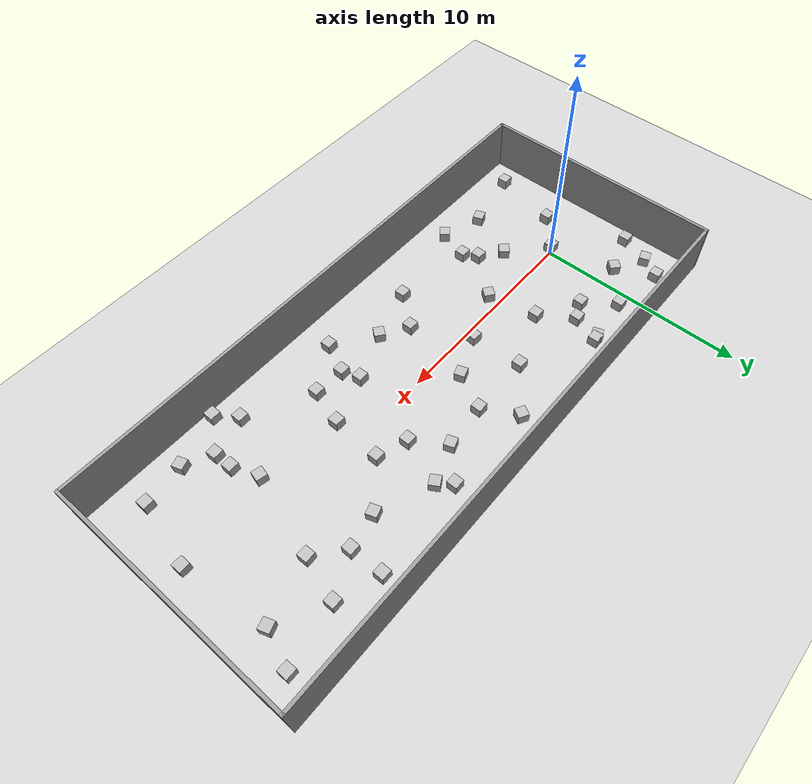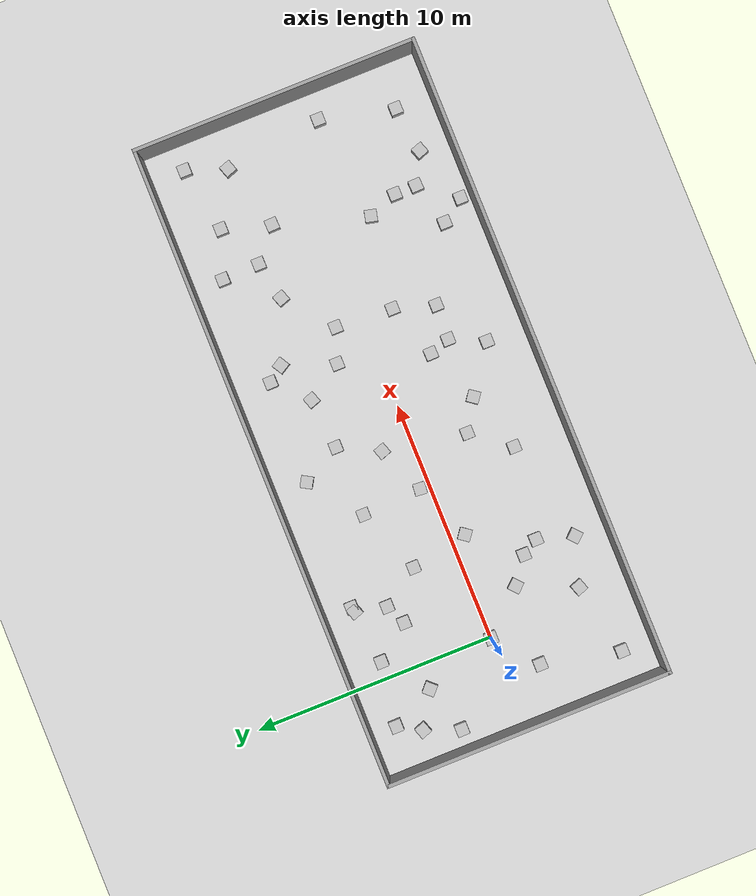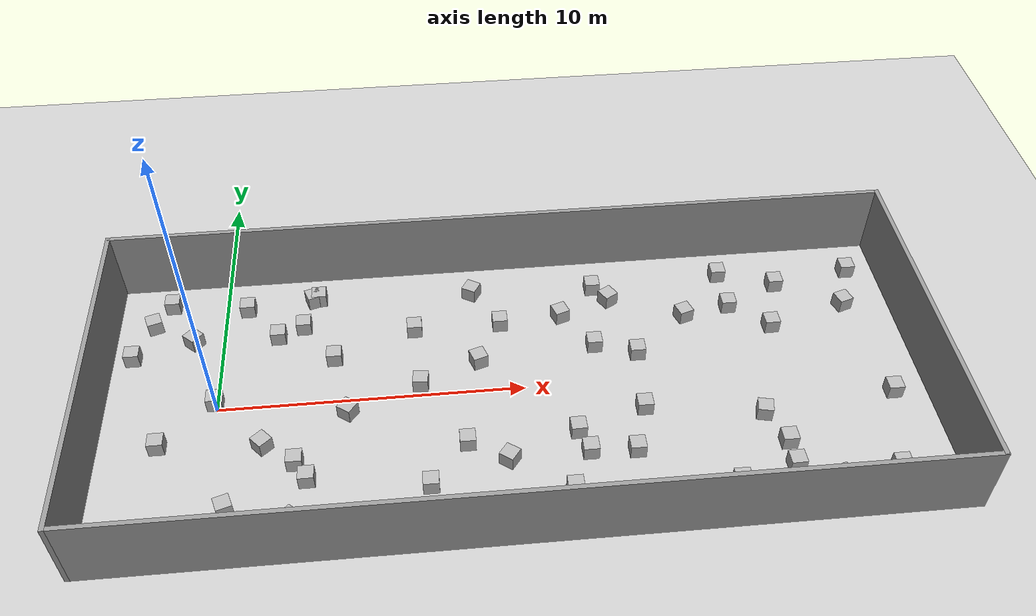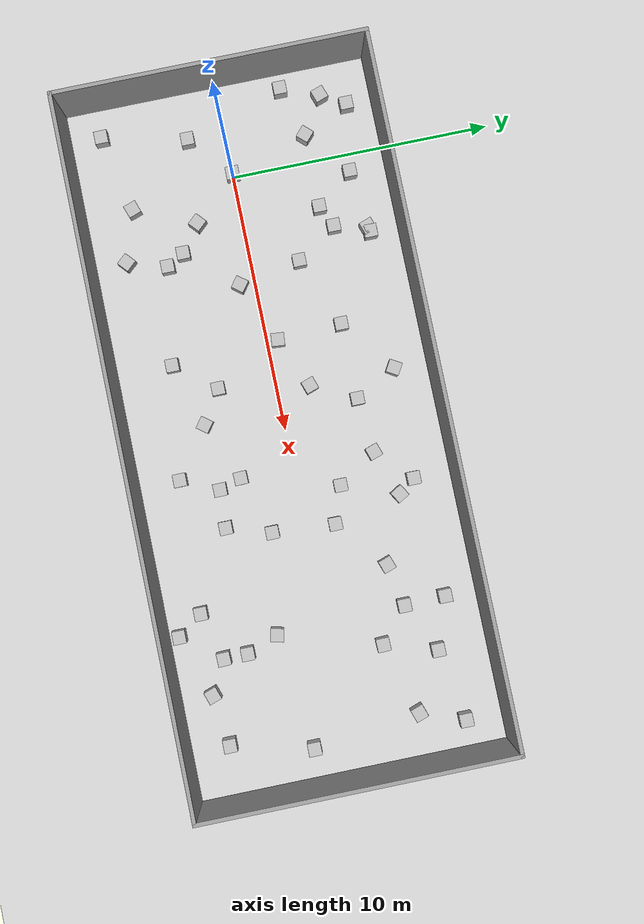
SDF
<sdf version="1.4">
 <world name="animated_box_world">
  <include><uri>model://ground_plane</uri></include>
  <include><uri>model://sun</uri></include>
  <model name="boxes">
   <model name="box_1">
    <pose name="pose">0 0 0.5 0 0 0</pose>
    <link name="link">
     <collision name="collision"><geometry><box><size>0.5 0.5 0.5</size></box></geometry></collision>
     <visual name="visual"><geometry><box><size>0.5 0.5 0.5</size></box></geometry></visual>
    </link>
   </model>
   <model name="box_2">
    <pose>0 0 0.5 0 0 0</pose>
    <link name="link">
     <collision name="collision"><geometry><box><size>0.5 0.5 0.5</size></box></geometry></collision>
     <visual name="visual"><geometry><box><size>0.5 0.5 0.5</size></box></geometry></visual>
    </link>
   </model>
   <model name="box_3">
    <pose>0 0 0.5 0 0 0</pose>
    <link name="link">
     <collision name="collision"><geometry><box><size>0.5 0.5 0.5</size></box></geometry></collision>
     <visual name="visual"><geometry><box><size>0.5 0.5 0.5</size></box></geometry></visual>
    </link>
   </model>
   <model name="box_4">
    <pose>0 0 0.5 0 0 0</pose>
    <link name="link">
     <collision name="collision"><geometry><box><size>0.5 0.5 0.5</size></box></geometry></collision>
     <visual name="visual"><geometry><box><size>0.5 0.5 0.5</size></box></geometry></visual>
    </link>
   </model>
   <plugin name="push_animate" filename="libanimated_box.so"/>
  </model>
  <model name="static-box-1">
   <pose>13.19 -2.96 0.249999 -2e-06 1e-06 1e-06</pose>
   <link name="link">
    <collision name="collision"><geometry><box><size>0.5 0.5 0.5</size></box></geometry></collision>
    <visual name="visual"><geometry><box><size>0.5 0.5 0.5</size></box></geometry></visual>
    <inertial>
     <inertia><ixx>1</ixx><ixy>0</ixy><ixz>0</ixz><iyy>1</iyy><iyz>0</iyz><izz>1</izz></inertia>
     <mass>1</mass>
    </inertial>
   </link>
  </model>
  <model name="static-box-3">
   <pose>1.85 3 0.249999 -1e-06 -1e-06 2e-06</pose>
   <link name="link">
    <collision name="collision"><geometry><box><size>0.5 0.5 0.5</size></box></geometry></collision>
    <visual name="visual"><geometry><box><size>0.5 0.5 0.5</size></box></geometry></visual>
    <inertial>
     <inertia><ixx>1</ixx><ixy>0</ixy><ixz>0</ixz><iyy>1</iyy><iyz>0</iyz><izz>1</izz></inertia>
     <mass>1</mass>
    </inertial>
   </link>
  </model>
  <model name="static-box-6">
   <pose>6.58134 0.409469 0.249999 -3.14159 -2e-06 3.05166</pose>
   <link name="link">
    <collision name="collision"><geometry><box><size>0.5 0.5 0.5</size></box></geometry></collision>
    <visual name="visual"><geometry><box><size>0.5 0.5 0.5</size></box></geometry></visual>
    <inertial>
     <inertia><ixx>1</ixx><ixy>0</ixy><ixz>0</ixz><iyy>1</iyy><iyz>0</iyz><izz>1</izz></inertia>
     <mass>1</mass>
    </inertial>
   </link>
  </model>
  <model name="static-box-8">
   <pose>-2.96 2.44 0.249999 2e-06 1e-06 1e-06</pose>
   <link name="link">
    <collision name="collision"><geometry><box><size>0.5 0.5 0.5</size></box></geometry></collision>
    <visual name="visual"><geometry><box><size>0.5 0.5 0.5</size></box></geometry></visual>
    <inertial>
     <inertia><ixx>1</ixx><ixy>0</ixy><ixz>0</ixz><iyy>1</iyy><iyz>0</iyz><izz>1</izz></inertia>
     <mass>1</mass>
    </inertial>
   </link>
  </model>
  <model name="static-box-9">
   <pose>17.9724 -4.00122 0.249999 2.87374 1.57079 2.89996</pose>
   <link name="link">
    <collision name="collision"><geometry><box><size>0.5 0.5 0.5</size></box></geometry></collision>
    <visual name="visual"><geometry><box><size>0.5 0.5 0.5</size></box></geometry></visual>
    <inertial>
     <inertia><ixx>1</ixx><ixy>0</ixy><ixz>0</ixz><iyy>1</iyy><iyz>0</iyz><izz>1</izz></inertia>
     <mass>1</mass>
    </inertial>
   </link>
  </model>
  <model name="static-box-11">
   <pose>16.84 -5.48 0.249999 1e-06 -2e-06 -1e-06</pose>
   <link name="link">
    <collision name="collision"><geometry><box><size>0.5 0.5 0.5</size></box></geometry></collision>
    <visual name="visual"><geometry><box><size>0.5 0.5 0.5</size></box></geometry></visual>
    <inertial>
     <inertia><ixx>1</ixx><ixy>0</ixy><ixz>0</ixz><iyy>1</iyy><iyz>0</iyz><izz>1</izz></inertia>
     <mass>1</mass>
    </inertial>
   </link>
  </model>
  <model name="static-box-12">
   <pose>13.87 1.13 0.25 -1e-06 -0 1e-06</pose>
   <link name="link">
    <collision name="collision"><geometry><box><size>0.5 0.5 0.5</size></box></geometry></collision>
    <visual name="visual"><geometry><box><size>0.5 0.5 0.5</size></box></geometry></visual>
    <inertial>
     <inertia><ixx>1</ixx><ixy>0</ixy><ixz>0</ixz><iyy>1</iyy><iyz>0</iyz><izz>1</izz></inertia>
     <mass>1</mass>
    </inertial>
   </link>
  </model>
  <model name="static-box-14">
   <pose>4.21 -0.58 0.249999 -2e-06 2e-06 2.5</pose>
   <link name="link">
    <collision name="collision"><geometry><box><size>0.5 0.5 0.5</size></box></geometry></collision>
    <visual name="visual"><geometry><box><size>0.5 0.5 0.5</size></box></geometry></visual>
    <inertial>
     <inertia><ixx>1</ixx><ixy>0</ixy><ixz>0</ixz><iyy>1</iyy><iyz>0</iyz><izz>1</izz></inertia>
     <mass>1</mass>
    </inertial>
   </link>
  </model>
  <model name="static-box-15">
   <pose>-2.45 -4.67 0.25 2e-06 0 -1e-06</pose>
   <link name="link">
    <collision name="collision"><geometry><box><size>0.5 0.5 0.5</size></box></geometry></collision>
    <visual name="visual"><geometry><box><size>0.5 0.5 0.5</size></box></geometry></visual>
    <inertial>
     <inertia><ixx>1</ixx><ixy>0</ixy><ixz>0</ixz><iyy>1</iyy><iyz>0</iyz><izz>1</izz></inertia>
     <mass>1</mass>
    </inertial>
   </link>
  </model>
  <model name="static-box-17">
   <pose>11.5025 3.11104 0.25 -1.5708 -0 -2.81111</pose>
   <link name="link">
    <collision name="collision"><geometry><box><size>0.5 0.5 0.5</size></box></geometry></collision>
    <visual name="visual"><geometry><box><size>0.5 0.5 0.5</size></box></geometry></visual>
    <inertial>
     <inertia><ixx>1</ixx><ixy>0</ixy><ixz>0</ixz><iyy>1</iyy><iyz>0</iyz><izz>1</izz></inertia>
     <mass>1</mass>
    </inertial>
   </link>
  </model>
  <model name="static-box-18">
   <pose>17.39 3.05 0.249999 1e-06 2e-06 0</pose>
   <link name="link">
    <collision name="collision"><geometry><box><size>0.5 0.5 0.5</size></box></geometry></collision>
    <visual name="visual"><geometry><box><size>0.5 0.5 0.5</size></box></geometry></visual>
    <inertial>
     <inertia><ixx>1</ixx><ixy>0</ixy><ixz>0</ixz><iyy>1</iyy><iyz>0</iyz><izz>1</izz></inertia>
     <mass>1</mass>
    </inertial>
   </link>
  </model>
  <model name="static-box-19">
   <pose>21.16 -4.41 0.249999 1e-06 -2e-06 -1e-06</pose>
   <link name="link">
    <collision name="collision"><geometry><box><size>0.5 0.5 0.5</size></box></geometry></collision>
    <visual name="visual"><geometry><box><size>0.5 0.5 0.5</size></box></geometry></visual>
    <inertial>
     <inertia><ixx>1</ixx><ixy>0</ixy><ixz>0</ixz><iyy>1</iyy><iyz>0</iyz><izz>1</izz></inertia>
     <mass>1</mass>
    </inertial>
   </link>
  </model>
  <model name="static-box-21">
   <pose>17.5024 -1.85915 0.25 2e-06 -0 -1.8</pose>
   <link name="link">
    <collision name="collision"><geometry><box><size>0.5 0.5 0.5</size></box></geometry></collision>
    <visual name="visual"><geometry><box><size>0.5 0.5 0.5</size></box></geometry></visual>
    <inertial>
     <inertia><ixx>1</ixx><ixy>0</ixy><ixz>0</ixz><iyy>1</iyy><iyz>0</iyz><izz>1</izz></inertia>
     <mass>1</mass>
    </inertial>
   </link>
  </model>
  <model name="static-box-22">
   <pose>2.7 3.39 0.249999 2e-06 1e-06 1e-06</pose>
   <link name="link">
    <collision name="collision"><geometry><box><size>0.5 0.5 0.5</size></box></geometry></collision>
    <visual name="visual"><geometry><box><size>0.5 0.5 0.5</size></box></geometry></visual>
    <inertial>
     <inertia><ixx>1</ixx><ixy>0</ixy><ixz>0</ixz><iyy>1</iyy><iyz>0</iyz><izz>1</izz></inertia>
     <mass>1</mass>
    </inertial>
   </link>
  </model>
  <model name="static-box-23">
   <pose>16.15 -4.52 0.249999 -1e-06 2e-06 1e-06</pose>
   <link name="link">
    <collision name="collision"><geometry><box><size>0.5 0.5 0.5</size></box></geometry></collision>
    <visual name="visual"><geometry><box><size>0.5 0.5 0.5</size></box></geometry></visual>
    <inertial>
     <inertia><ixx>1</ixx><ixy>0</ixy><ixz>0</ixz><iyy>1</iyy><iyz>0</iyz><izz>1</izz></inertia>
     <mass>1</mass>
    </inertial>
   </link>
  </model>
  <model name="static-box-24">
   <pose>7.95 -2.19 0.249999 1e-06 2e-06 -1e-06</pose>
   <link name="link">
    <collision name="collision"><geometry><box><size>0.5 0.5 0.5</size></box></geometry></collision>
    <visual name="visual"><geometry><box><size>0.5 0.5 0.5</size></box></geometry></visual>
    <inertial>
     <inertia><ixx>1</ixx><ixy>0</ixy><ixz>0</ixz><iyy>1</iyy><iyz>0</iyz><izz>1</izz></inertia>
     <mass>1</mass>
    </inertial>
   </link>
  </model>
  <model name="static-box-25">
   <pose>8.52 4.52 0.249999 2e-06 -0 -2.1</pose>
   <link name="link">
    <collision name="collision"><geometry><box><size>0.5 0.5 0.5</size></box></geometry></collision>
    <visual name="visual"><geometry><box><size>0.5 0.5 0.5</size></box></geometry></visual>
    <inertial>
     <inertia><ixx>1</ixx><ixy>0</ixy><ixz>0</ixz><iyy>1</iyy><iyz>0</iyz><izz>1</izz></inertia>
     <mass>1</mass>
    </inertial>
   </link>
  </model>
  <model name="static-box-22_clone">
   <pose>6.4616 2.90024 0.249999 1e-06 2e-06 3e-06</pose>
   <link name="link">
    <collision name="collision"><geometry><box><size>0.5 0.5 0.5</size></box></geometry></collision>
    <visual name="visual"><geometry><box><size>0.5 0.5 0.5</size></box></geometry></visual>
    <inertial>
     <inertia><ixx>1</ixx><ixy>0</ixy><ixz>0</ixz><iyy>1</iyy><iyz>0</iyz><izz>1</izz></inertia>
     <mass>1</mass>
    </inertial>
   </link>
  </model>
  <model name="static-box-22_clone_clone">
   <pose>1.54635 -1.69897 0.249999 2e-06 2e-06 2.3</pose>
   <link name="link">
    <collision name="collision"><geometry><box><size>0.5 0.5 0.5</size></box></geometry></collision>
    <visual name="visual"><geometry><box><size>0.5 0.5 0.5</size></box></geometry></visual>
    <inertial>
     <inertia><ixx>1</ixx><ixy>0</ixy><ixz>0</ixz><iyy>1</iyy><iyz>0</iyz><izz>1</izz></inertia>
     <mass>1</mass>
    </inertial>
   </link>
  </model>
  <model name="static-box-22_clone_clone_clone">
   <pose>-1.72184 -1.43715 0.249999 -1e-06 2e-06 1e-06</pose>
   <link name="link">
    <collision name="collision"><geometry><box><size>0.5 0.5 0.5</size></box></geometry></collision>
    <visual name="visual"><geometry><box><size>0.5 0.5 0.5</size></box></geometry></visual>
    <inertial>
     <inertia><ixx>1</ixx><ixy>0</ixy><ixz>0</ixz><iyy>1</iyy><iyz>0</iyz><izz>1</izz></inertia>
     <mass>1</mass>
    </inertial>
   </link>
  </model>
  <model name="static-box-22_clone_clone_clone_clone">
   <pose>-0.987316 3.02709 0.249999 -2e-06 -2e-06 2.4</pose>
   <link name="link">
    <collision name="collision"><geometry><box><size>0.5 0.5 0.5</size></box></geometry></collision>
    <visual name="visual"><geometry><box><size>0.5 0.5 0.5</size></box></geometry></visual>
    <inertial>
     <inertia><ixx>1</ixx><ixy>0</ixy><ixz>0</ixz><iyy>1</iyy><iyz>0</iyz><izz>1</izz></inertia>
     <mass>1</mass>
    </inertial>
   </link>
  </model>
  <model name="static-box-9_clone">
   <pose>18.6621 1.96673 0.25 3.11537 1.57079 3.14159</pose>
   <link name="link">
    <collision name="collision"><geometry><box><size>0.5 0.5 0.5</size></box></geometry></collision>
    <visual name="visual"><geometry><box><size>0.5 0.5 0.5</size></box></geometry></visual>
    <inertial>
     <inertia><ixx>1</ixx><ixy>0</ixy><ixz>0</ixz><iyy>1</iyy><iyz>0</iyz><izz>1</izz></inertia>
     <mass>1</mass>
    </inertial>
   </link>
  </model>
  <model name="static-box-9_clone_clone">
   <pose>11.459 -2.02778 0.249999 2.29077 1.57079 2.317</pose>
   <link name="link">
    <collision name="collision"><geometry><box><size>0.5 0.5 0.5</size></box></geometry></collision>
    <visual name="visual"><geometry><box><size>0.5 0.5 0.5</size></box></geometry></visual>
    <inertial>
     <inertia><ixx>1</ixx><ixy>0</ixy><ixz>0</ixz><iyy>1</iyy><iyz>0</iyz><izz>1</izz></inertia>
     <mass>1</mass>
    </inertial>
   </link>
  </model>
  <model name="static-box-17_clone">
   <pose>8.53873 1.25127 0.25 -1.5708 -0 -2.81111</pose>
   <link name="link">
    <collision name="collision"><geometry><box><size>0.5 0.5 0.5</size></box></geometry></collision>
    <visual name="visual"><geometry><box><size>0.5 0.5 0.5</size></box></geometry></visual>
    <inertial>
     <inertia><ixx>1</ixx><ixy>0</ixy><ixz>0</ixz><iyy>1</iyy><iyz>0</iyz><izz>1</izz></inertia>
     <mass>1</mass>
    </inertial>
   </link>
  </model>
  <model name="static-box-24_clone">
   <pose>2.97013 -3.14949 0.25 0 -0 1e-06</pose>
   <link name="link">
    <collision name="collision"><geometry><box><size>0.5 0.5 0.5</size></box></geometry></collision>
    <visual name="visual"><geometry><box><size>0.5 0.5 0.5</size></box></geometry></visual>
    <inertial>
     <inertia><ixx>1</ixx><ixy>0</ixy><ixz>0</ixz><iyy>1</iyy><iyz>0</iyz><izz>1</izz></inertia>
     <mass>1</mass>
    </inertial>
   </link>
  </model>
  <model name="static-box-24_clone_0">
   <pose>6.7355 -3.72569 0.249999 -2e-06 1e-06 -0</pose>
   <link name="link">
    <collision name="collision"><geometry><box><size>0.5 0.5 0.5</size></box></geometry></collision>
    <visual name="visual"><geometry><box><size>0.5 0.5 0.5</size></box></geometry></visual>
    <inertial>
     <inertia><ixx>1</ixx><ixy>0</ixy><ixz>0</ixz><iyy>1</iyy><iyz>0</iyz><izz>1</izz></inertia>
     <mass>1</mass>
    </inertial>
   </link>
  </model>
  <model name="static-box-1_clone">
   <pose>21.9145 -1.33857 0.249999 1e-06 2e-06 0</pose>
   <link name="link">
    <collision name="collision"><geometry><box><size>0.5 0.5 0.5</size></box></geometry></collision>
    <visual name="visual"><geometry><box><size>0.5 0.5 0.5</size></box></geometry></visual>
    <inertial>
     <inertia><ixx>1</ixx><ixy>0</ixy><ixz>0</ixz><iyy>1</iyy><iyz>0</iyz><izz>1</izz></inertia>
     <mass>1</mass>
    </inertial>
   </link>
  </model>
  <model name="static-box-1_clone_clone">
   <pose>19.2665 3.94861 0.249999 2e-06 -1e-06 1e-06</pose>
   <link name="link">
    <collision name="collision"><geometry><box><size>0.5 0.5 0.5</size></box></geometry></collision>
    <visual name="visual"><geometry><box><size>0.5 0.5 0.5</size></box></geometry></visual>
    <inertial>
     <inertia><ixx>1</ixx><ixy>0</ixy><ixz>0</ixz><iyy>1</iyy><iyz>0</iyz><izz>1</izz></inertia>
     <mass>1</mass>
    </inertial>
   </link>
  </model>
  <model name="static-box-18_clone">
   <pose>12.7796 4.38472 0.249999 1e-06 1e-06 -1e-06</pose>
   <link name="link">
    <collision name="collision"><geometry><box><size>0.5 0.5 0.5</size></box></geometry></collision>
    <visual name="visual"><geometry><box><size>0.5 0.5 0.5</size></box></geometry></visual>
    <inertial>
     <inertia><ixx>1</ixx><ixy>0</ixy><ixz>0</ixz><iyy>1</iyy><iyz>0</iyz><izz>1</izz></inertia>
     <mass>1</mass>
    </inertial>
   </link>
  </model>
  <model name="static-box-15_clone">
   <pose>0.740507 4.42716 0.249999 1e-06 2e-06 0</pose>
   <link name="link">
    <collision name="collision"><geometry><box><size>0.5 0.5 0.5</size></box></geometry></collision>
    <visual name="visual"><geometry><box><size>0.5 0.5 0.5</size></box></geometry></visual>
    <inertial>
     <inertia><ixx>1</ixx><ixy>0</ixy><ixz>0</ixz><iyy>1</iyy><iyz>0</iyz><izz>1</izz></inertia>
     <mass>1</mass>
    </inertial>
   </link>
  </model>
  <model name="static-box-22_clone_0">
   <pose>3.75296 1.82257 0.249999 -1e-06 -2e-06 2e-06</pose>
   <link name="link">
    <collision name="collision"><geometry><box><size>0.5 0.5 0.5</size></box></geometry></collision>
    <visual name="visual"><geometry><box><size>0.5 0.5 0.5</size></box></geometry></visual>
    <inertial>
     <inertia><ixx>1</ixx><ixy>0</ixy><ixz>0</ixz><iyy>1</iyy><iyz>0</iyz><izz>1</izz></inertia>
     <mass>1</mass>
    </inertial>
   </link>
  </model>
  <model name="static-box-12_clone">
   <pose>13.7097 -1.26957 0.249999 1e-06 2e-06 0</pose>
   <link name="link">
    <collision name="collision"><geometry><box><size>0.5 0.5 0.5</size></box></geometry></collision>
    <visual name="visual"><geometry><box><size>0.5 0.5 0.5</size></box></geometry></visual>
    <inertial>
     <inertia><ixx>1</ixx><ixy>0</ixy><ixz>0</ixz><iyy>1</iyy><iyz>0</iyz><izz>1</izz></inertia>
     <mass>1</mass>
    </inertial>
   </link>
  </model>
  <model name="static-box-12_clone_0">
   <pose>12.4831 1.62032 0.249999 1e-06 -2e-06 1e-06</pose>
   <link name="link">
    <collision name="collision"><geometry><box><size>0.5 0.5 0.5</size></box></geometry></collision>
    <visual name="visual"><geometry><box><size>0.5 0.5 0.5</size></box></geometry></visual>
    <inertial>
     <inertia><ixx>1</ixx><ixy>0</ixy><ixz>0</ixz><iyy>1</iyy><iyz>0</iyz><izz>1</izz></inertia>
     <mass>1</mass>
    </inertial>
   </link>
  </model>
  <model name="static-box-17_clone_0">
   <pose>21.4157 2.76641 0.25 -1.5708 -0 -2.81111</pose>
   <link name="link">
    <collision name="collision"><geometry><box><size>0.5 0.5 0.5</size></box></geometry></collision>
    <visual name="visual"><geometry><box><size>0.5 0.5 0.5</size></box></geometry></visual>
    <inertial>
     <inertia><ixx>1</ixx><ixy>0</ixy><ixz>0</ixz><iyy>1</iyy><iyz>0</iyz><izz>1</izz></inertia>
     <mass>1</mass>
    </inertial>
   </link>
  </model>
  <model name="static-box-17_clone_clone">
   <pose>0.545141 -4.0345 0.25 -1.5708 -0 -2.81111</pose>
   <link name="link">
    <collision name="collision"><geometry><box><size>0.5 0.5 0.5</size></box></geometry></collision>
    <visual name="visual"><geometry><box><size>0.5 0.5 0.5</size></box></geometry></visual>
    <inertial>
     <inertia><ixx>1</ixx><ixy>0</ixy><ixz>0</ixz><iyy>1</iyy><iyz>0</iyz><izz>1</izz></inertia>
     <mass>1</mass>
    </inertial>
   </link>
  </model>
  <model name="static-box-24_clone_1">
   <pose>9.20474 -2.96209 0.25 0 -0 2.5</pose>
   <link name="link">
    <collision name="collision"><geometry><box><size>0.5 0.5 0.5</size></box></geometry></collision>
    <visual name="visual"><geometry><box><size>0.5 0.5 0.5</size></box></geometry></visual>
    <inertial>
     <inertia><ixx>1</ixx><ixy>0</ixy><ixz>0</ixz><iyy>1</iyy><iyz>0</iyz><izz>1</izz></inertia>
     <mass>1</mass>
    </inertial>
   </link>
  </model>
  <model name="static-box-24_clone_2">
   <pose>2.58153 -2.46906 0.25 0 1e-06 -1e-06</pose>
   <link name="link">
    <collision name="collision"><geometry><box><size>0.5 0.5 0.5</size></box></geometry></collision>
    <visual name="visual"><geometry><box><size>0.5 0.5 0.5</size></box></geometry></visual>
    <inertial>
     <inertia><ixx>1</ixx><ixy>0</ixy><ixz>0</ixz><iyy>1</iyy><iyz>0</iyz><izz>1</izz></inertia>
     <mass>1</mass>
    </inertial>
   </link>
  </model>
  <model name="static-box-24_clone_3">
   <pose>11.0743 -4.30022 0.25 0 1e-06 -1e-06</pose>
   <link name="link">
    <collision name="collision"><geometry><box><size>0.5 0.5 0.5</size></box></geometry></collision>
    <visual name="visual"><geometry><box><size>0.5 0.5 0.5</size></box></geometry></visual>
    <inertial>
     <inertia><ixx>1</ixx><ixy>0</ixy><ixz>0</ixz><iyy>1</iyy><iyz>0</iyz><izz>1</izz></inertia>
     <mass>1</mass>
    </inertial>
   </link>
  </model>
  <model name="static-box-24_clone_4">
   <pose>13.2599 3.74209 0.25 0 -0 2.1</pose>
   <link name="link">
    <collision name="collision"><geometry><box><size>0.5 0.5 0.5</size></box></geometry></collision>
    <visual name="visual"><geometry><box><size>0.5 0.5 0.5</size></box></geometry></visual>
    <inertial>
     <inertia><ixx>1</ixx><ixy>0</ixy><ixz>0</ixz><iyy>1</iyy><iyz>0</iyz><izz>1</izz></inertia>
     <mass>1</mass>
    </inertial>
   </link>
  </model>
  <model name="static-box-24_clone_5">
   <pose>3.19443 4.72459 0.25 0 1e-06 -1e-06</pose>
   <link name="link">
    <collision name="collision"><geometry><box><size>0.5 0.5 0.5</size></box></geometry></collision>
    <visual name="visual"><geometry><box><size>0.5 0.5 0.5</size></box></geometry></visual>
    <inertial>
     <inertia><ixx>1</ixx><ixy>0</ixy><ixz>0</ixz><iyy>1</iyy><iyz>0</iyz><izz>1</izz></inertia>
     <mass>1</mass>
    </inertial>
   </link>
  </model>
  <model name="static-box-24_clone_6">
   <pose>9.38785 2.91862 0.25 0 1e-06 -1e-06</pose>
   <link name="link">
    <collision name="collision"><geometry><box><size>0.5 0.5 0.5</size></box></geometry></collision>
    <visual name="visual"><geometry><box><size>0.5 0.5 0.5</size></box></geometry></visual>
    <inertial>
     <inertia><ixx>1</ixx><ixy>0</ixy><ixz>0</ixz><iyy>1</iyy><iyz>0</iyz><izz>1</izz></inertia>
     <mass>1</mass>
    </inertial>
   </link>
  </model>
  <model name="static-box-24_clone_7">
   <pose>22.0165 4.43039 0.25 0 1e-06 -1e-06</pose>
   <link name="link">
    <collision name="collision"><geometry><box><size>0.5 0.5 0.5</size></box></geometry></collision>
    <visual name="visual"><geometry><box><size>0.5 0.5 0.5</size></box></geometry></visual>
    <inertial>
     <inertia><ixx>1</ixx><ixy>0</ixy><ixz>0</ixz><iyy>1</iyy><iyz>0</iyz><izz>1</izz></inertia>
     <mass>1</mass>
    </inertial>
   </link>
  </model>
  <model name="static-box-24_clone_8">
   <pose>17.9661 -3.08279 0.25 0 1e-06 -1e-06</pose>
   <link name="link">
    <collision name="collision"><geometry><box><size>0.5 0.5 0.5</size></box></geometry></collision>
    <visual name="visual"><geometry><box><size>0.5 0.5 0.5</size></box></geometry></visual>
    <inertial>
     <inertia><ixx>1</ixx><ixy>0</ixy><ixz>0</ixz><iyy>1</iyy><iyz>0</iyz><izz>1</izz></inertia>
     <mass>1</mass>
    </inertial>
   </link>
  </model>
  <model name="static-box-24_clone_9">
   <pose>17.3441 4.6231 0.25 0 1e-06 -1e-06</pose>
   <link name="link">
    <collision name="collision"><geometry><box><size>0.5 0.5 0.5</size></box></geometry></collision>
    <visual name="visual"><geometry><box><size>0.5 0.5 0.5</size></box></geometry></visual>
    <inertial>
     <inertia><ixx>1</ixx><ixy>0</ixy><ixz>0</ixz><iyy>1</iyy><iyz>0</iyz><izz>1</izz></inertia>
     <mass>1</mass>
    </inertial>
   </link>
  </model>
  <model name="static-box-24_clone_10">
   <pose>11.7323 -2.88122 0.25 0 1e-06 -1e-06</pose>
   <link name="link">
    <collision name="collision"><geometry><box><size>0.5 0.5 0.5</size></box></geometry></collision>
    <visual name="visual"><geometry><box><size>0.5 0.5 0.5</size></box></geometry></visual>
    <inertial>
     <inertia><ixx>1</ixx><ixy>0</ixy><ixz>0</ixz><iyy>1</iyy><iyz>0</iyz><izz>1</izz></inertia>
     <mass>1</mass>
    </inertial>
   </link>
  </model>
  <model name="static-box-24_clone_11">
   <pose>-1.86368 4.8322 0.25 0 1e-06 -1e-06</pose>
   <link name="link">
    <collision name="collision"><geometry><box><size>0.5 0.5 0.5</size></box></geometry></collision>
    <visual name="visual"><geometry><box><size>0.5 0.5 0.5</size></box></geometry></visual>
    <inertial>
     <inertia><ixx>1</ixx><ixy>0</ixy><ixz>0</ixz><iyy>1</iyy><iyz>0</iyz><izz>1</izz></inertia>
     <mass>1</mass>
    </inertial>
   </link>
  </model>
  <model name="static-box-24_clone_12">
   <pose>2.51469 -4.65075 0.25 0 -0 2.3</pose>
   <link name="link">
    <collision name="collision"><geometry><box><size>0.5 0.5 0.5</size></box></geometry></collision>
    <visual name="visual"><geometry><box><size>0.5 0.5 0.5</size></box></geometry></visual>
    <inertial>
     <inertia><ixx>1</ixx><ixy>0</ixy><ixz>0</ixz><iyy>1</iyy><iyz>0</iyz><izz>1</izz></inertia>
     <mass>1</mass>
    </inertial>
   </link>
  </model>
  <model name="static-box-17_clone_clone_clone">
   <pose>15.7654 2.72706 0.25 -1.5708 -0 -2.81111</pose>
   <link name="link">
    <collision name="collision"><geometry><box><size>0.5 0.5 0.5</size></box></geometry></collision>
    <visual name="visual"><geometry><box><size>0.5 0.5 0.5</size></box></geometry></visual>
    <inertial>
     <inertia><ixx>1</ixx><ixy>0</ixy><ixz>0</ixz><iyy>1</iyy><iyz>0</iyz><izz>1</izz></inertia>
     <mass>1</mass>
    </inertial>
   </link>
  </model>
  <model name="static-box-17_clone_clone_clone_0">
   <pose>19.2176 -4.67166 0.25 -1.5708 -0 -2.81111</pose>
   <link name="link">
    <collision name="collision"><geometry><box><size>0.5 0.5 0.5</size></box></geometry></collision>
    <visual name="visual"><geometry><box><size>0.5 0.5 0.5</size></box></geometry></visual>
    <inertial>
     <inertia><ixx>1</ixx><ixy>0</ixy><ixz>0</ixz><iyy>1</iyy><iyz>0</iyz><izz>1</izz></inertia>
     <mass>1</mass>
    </inertial>
   </link>
  </model>
  <model name="static-box-17_clone_clone_clone_1">
   <pose>3.00058 4.66805 0.25 -1.5708 -0 -2.81111</pose>
   <link name="link">
    <collision name="collision"><geometry><box><size>0.5 0.5 0.5</size></box></geometry></collision>
    <visual name="visual"><geometry><box><size>0.5 0.5 0.5</size></box></geometry></visual>
    <inertial>
     <inertia><ixx>1</ixx><ixy>0</ixy><ixz>0</ixz><iyy>1</iyy><iyz>0</iyz><izz>1</izz></inertia>
     <mass>1</mass>
    </inertial>
   </link>
  </model>
  <model name="static-box-17_clone_clone_clone_2">
   <pose>-2.40716 3.88957 0.25 -1.5708 -0 -2.81111</pose>
   <link name="link">
    <collision name="collision"><geometry><box><size>0.5 0.5 0.5</size></box></geometry></collision>
    <visual name="visual"><geometry><box><size>0.5 0.5 0.5</size></box></geometry></visual>
    <inertial>
     <inertia><ixx>1</ixx><ixy>0</ixy><ixz>0</ixz><iyy>1</iyy><iyz>0</iyz><izz>1</izz></inertia>
     <mass>1</mass>
    </inertial>
   </link>
  </model>
  <model name="Walls">
   <pose>9.71176 -0.031528 0 0 -0 0</pose>
   <link name="Wall_2">
    <collision name="Wall_2_Collision">
     <geometry><box><size>12 0.15 2.5</size></box></geometry>
     <pose>0 0 1.25 0 -0 0</pose>
    </collision>
    <visual name="Wall_2_Visual">
     <pose>0 0 1.25 0 -0 0</pose>
     <geometry><box><size>12 0.15 2.5</size></box></geometry>
     <material>
      <script><uri>file://media/materials/scripts/gazebo.material</uri><name>Gazebo/Grey</name></script>
      <ambient>1 1 1 1</ambient>
     </material>
     <meta><layer>0</layer></meta>
    </visual>
    <pose>-13.425 0 0 0 -0 1.5708</pose>
   </link>
   <link name="Wall_5">
    <collision name="Wall_5_Collision">
     <geometry><box><size>27 0.15 2.5</size></box></geometry>
     <pose>0 0 1.25 0 -0 0</pose>
    </collision>
    <visual name="Wall_5_Visual">
     <pose>0 0 1.25 0 -0 0</pose>
     <geometry><box><size>27 0.15 2.5</size></box></geometry>
     <material>
      <script><uri>file://media/materials/scripts/gazebo.material</uri><name>Gazebo/Grey</name></script>
      <ambient>1 1 1 1</ambient>
     </material>
     <meta><layer>0</layer></meta>
    </visual>
    <pose>-0 5.925 0 0 -0 0</pose>
   </link>
   <link name="Wall_6">
    <collision name="Wall_6_Collision">
     <geometry><box><size>12 0.15 2.5</size></box></geometry>
     <pose>0 0 1.25 0 -0 0</pose>
    </collision>
    <visual name="Wall_6_Visual">
     <pose>0 0 1.25 0 -0 0</pose>
     <geometry><box><size>12 0.15 2.5</size></box></geometry>
     <material>
      <script><uri>file://media/materials/scripts/gazebo.material</uri><name>Gazebo/Grey</name></script>
      <ambient>1 1 1 1</ambient>
     </material>
     <meta><layer>0</layer></meta>
    </visual>
    <pose>13.425 0 0 0 -0 -1.5708</pose>
   </link>
   <link name="Wall_7">
    <collision name="Wall_7_Collision">
     <geometry><box><size>27 0.15 2.5</size></box></geometry>
     <pose>0 0 1.25 0 -0 0</pose>
    </collision>
    <visual name="Wall_7_Visual">
     <pose>0 0 1.25 0 -0 0</pose>
     <geometry><box><size>27 0.15 2.5</size></box></geometry>
     <material>
      <script><uri>file://media/materials/scripts/gazebo.material</uri><name>Gazebo/Grey</name></script>
      <ambient>1 1 1 1</ambient>
     </material>
     <meta><layer>0</layer></meta>
    </visual>
    <pose>-0 -5.925 0 0 -0 3.14159</pose>
   </link>
   <static>1</static>
  </model>
 </world>
</sdf>
